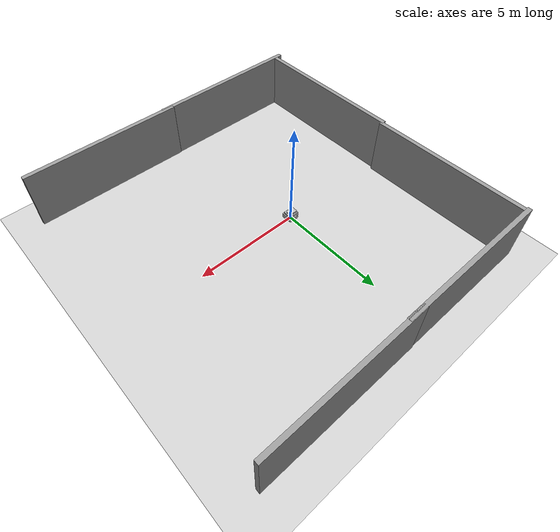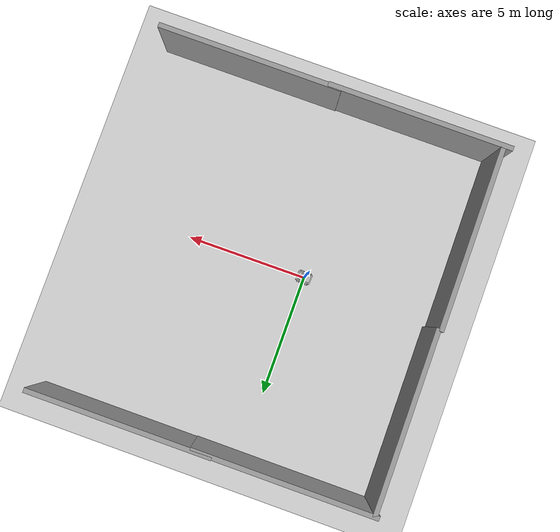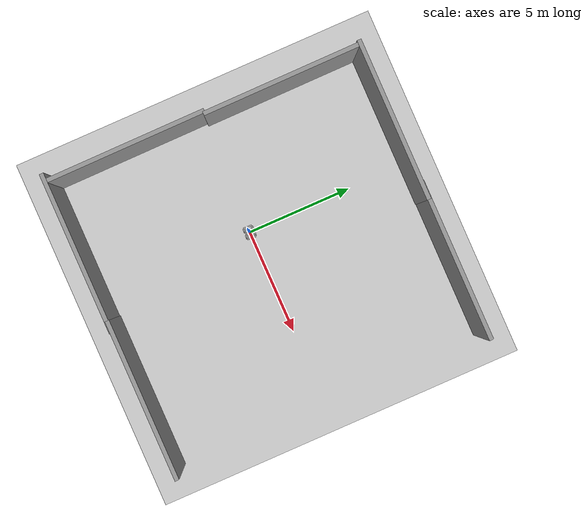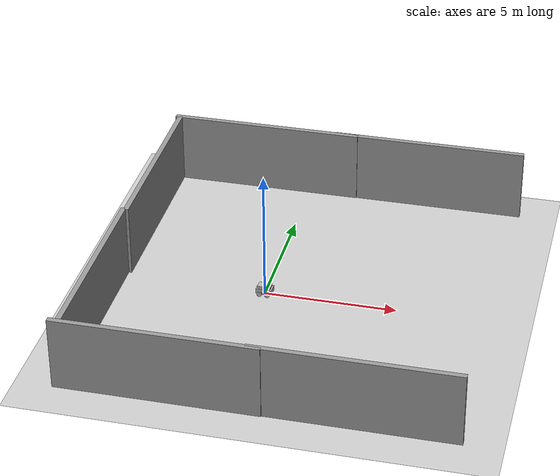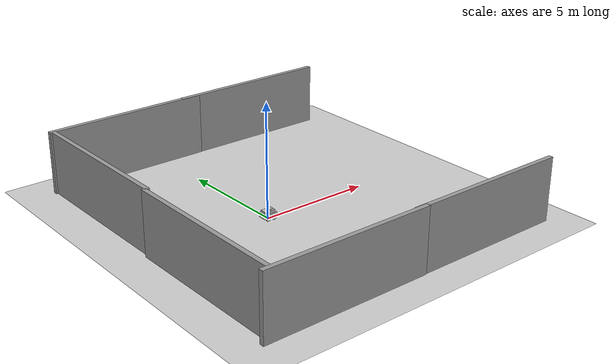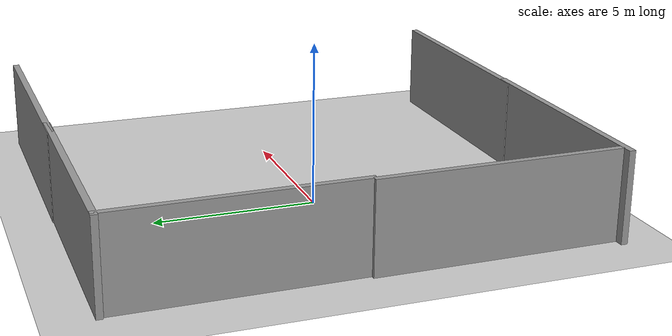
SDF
<sdf version="1.7">
 <world name="default">
  <light name="sun" type="directional">
   <pose>0 0 10 0 -0 0</pose>
   <diffuse>0.8 0.8 0.8 1</diffuse>
   <specular>0.2 0.2 0.2 1</specular>
   <attenuation>
    <range>1000</range>
    <constant>0.9</constant>
    <linear>0.01</linear>
    <quadratic>0.001</quadratic>
   </attenuation>
   <direction>-0.5 0.1 -0.9</direction>
   <spot><inner_angle>0</inner_angle><outer_angle>0</outer_angle><falloff>0</falloff></spot>
  </light>
  <model name="ground_plane">
   <static>1</static>
   <link name="link">
    <collision name="collision">
     <geometry><plane><normal>0 0 1</normal><size>100 100</size></plane></geometry>
     <surface><friction><ode><mu>100</mu><mu2>50</mu2></ode></friction></surface>
    </collision>
    <visual name="visual">
     <cast_shadows>0</cast_shadows>
     <geometry><plane><normal>0 0 1</normal><size>100 100</size></plane></geometry>
     <material>
      <script><uri>file://media/materials/scripts/gazebo.material</uri><name>Gazebo/Grey</name></script>
     </material>
    </visual>
   </link>
  </model>
  <gravity>0 0 -9.8</gravity>
  <magnetic_field>6e-06 2.3e-05 -4.2e-05</magnetic_field>
  <atmosphere type="adiabatic"/>
  <physics type="ode">
   <max_step_size>0.001</max_step_size>
   <real_time_factor>1</real_time_factor>
   <real_time_update_rate>1000</real_time_update_rate>
  </physics>
  <scene><ambient>0.4 0.4 0.4 1</ambient><background>0.7 0.7 0.7 1</background><shadows>1</shadows></scene>
  <audio><device>default</device></audio>
  <spherical_coordinates>
   <surface_model>EARTH_WGS84</surface_model>
   <latitude_deg>0</latitude_deg>
   <longitude_deg>0</longitude_deg>
   <elevation>0</elevation>
   <heading_deg>0</heading_deg>
  </spherical_coordinates>
  <model name="grey_wall">
   <static>1</static>
   <link name="link">
    <pose>0 0 1.4 0 -0 0</pose>
    <collision name="collision"><geometry><box><size>7.5 0.2 2.8</size></box></geometry></collision>
    <visual name="visual">
     <cast_shadows>0</cast_shadows>
     <geometry><box><size>7.5 0.2 2.8</size></box></geometry>
     <material>
      <script>
       <uri>model://grey_wall/materials/scripts</uri>
       <uri>model://grey_wall/materials/textures</uri>
       <name>vrc/grey_wall</name>
      </script>
     </material>
    </visual>
   </link>
   <pose>-1.82853 7.64203 0 0 -0 0</pose>
  </model>
  <model name="grey_wall_clone">
   <static>1</static>
   <link name="link">
    <pose>0 0 1.4 0 -0 0</pose>
    <collision name="collision"><geometry><box><size>7.5 0.2 2.8</size></box></geometry></collision>
    <visual name="visual">
     <cast_shadows>0</cast_shadows>
     <geometry><box><size>7.5 0.2 2.8</size></box></geometry>
     <material>
      <script>
       <uri>model://grey_wall/materials/scripts</uri>
       <uri>model://grey_wall/materials/textures</uri>
       <name>vrc/grey_wall</name>
      </script>
     </material>
    </visual>
   </link>
   <pose>4.78963 7.66435 0 0 -0 0</pose>
  </model>
  <model name="grey_wall_clone_clone">
   <static>1</static>
   <link name="link">
    <pose>0 0 1.4 0 -0 0</pose>
    <collision name="collision"><geometry><box><size>7.5 0.2 2.8</size></box></geometry></collision>
    <visual name="visual">
     <cast_shadows>0</cast_shadows>
     <geometry><box><size>7.5 0.2 2.8</size></box></geometry>
     <material>
      <script>
       <uri>model://grey_wall/materials/scripts</uri>
       <uri>model://grey_wall/materials/textures</uri>
       <name>vrc/grey_wall</name>
      </script>
     </material>
    </visual>
   </link>
   <pose>4.87125 -7.15201 0 0 -0 0</pose>
  </model>
  <model name="grey_wall_clone_clone_clone">
   <static>1</static>
   <link name="link">
    <pose>0 0 1.4 0 -0 0</pose>
    <collision name="collision"><geometry><box><size>7.5 0.2 2.8</size></box></geometry></collision>
    <visual name="visual">
     <cast_shadows>0</cast_shadows>
     <geometry><box><size>7.5 0.2 2.8</size></box></geometry>
     <material>
      <script>
       <uri>model://grey_wall/materials/scripts</uri>
       <uri>model://grey_wall/materials/textures</uri>
       <name>vrc/grey_wall</name>
      </script>
     </material>
    </visual>
   </link>
   <pose>-2.06223 -7.18553 0 0 -0 0</pose>
  </model>
  <model name="grey_wall_clone_clone_clone_0">
   <static>1</static>
   <link name="link">
    <pose>0 0 1.4 0 -0 0</pose>
    <collision name="collision"><geometry><box><size>7.5 0.2 2.8</size></box></geometry></collision>
    <visual name="visual">
     <cast_shadows>0</cast_shadows>
     <geometry><box><size>7.5 0.2 2.8</size></box></geometry>
     <material>
      <script>
       <uri>model://grey_wall/materials/scripts</uri>
       <uri>model://grey_wall/materials/textures</uri>
       <name>vrc/grey_wall</name>
      </script>
     </material>
    </visual>
   </link>
   <pose>-5.38363 3.97999 0 0 -0 1.57536</pose>
  </model>
  <model name="grey_wall_clone_clone_clone_0_clone">
   <static>1</static>
   <link name="link">
    <pose>0 0 1.4 0 -0 0</pose>
    <collision name="collision"><geometry><box><size>7.5 0.2 2.8</size></box></geometry></collision>
    <visual name="visual">
     <cast_shadows>0</cast_shadows>
     <geometry><box><size>7.5 0.2 2.8</size></box></geometry>
     <material>
      <script>
       <uri>model://grey_wall/materials/scripts</uri>
       <uri>model://grey_wall/materials/textures</uri>
       <name>vrc/grey_wall</name>
      </script>
     </material>
    </visual>
   </link>
   <pose>-5.46152 -3.41995 0 0 -0 1.57536</pose>
  </model>
  <model name="my_zobot">
   <link name="base_footprint">
    <inertial>
     <pose>0.1 0 0.425 0 -0 0</pose>
     <mass>1</mass>
     <inertia>
      <ixx>0.0233333</ixx>
      <ixy>0</ixy>
      <ixz>0</ixz>
      <iyy>0.0233333</iyy>
      <iyz>0</iyz>
      <izz>0.005</izz>
     </inertia>
    </inertial>
    <collision name="base_footprint_fixed_joint_lump__base_link_collision">
     <pose>0 0 0.2 0 -0 0</pose>
     <geometry><box><size>0.6 0.4 0.2</size></box></geometry>
    </collision>
    <collision name="base_footprint_fixed_joint_lump__lidar_collision_1">
     <pose>0.1 0 0.425 0 -0 0</pose>
     <geometry><cylinder><length>0.05</length><radius>0.1</radius></cylinder></geometry>
    </collision>
    <collision name="base_footprint_fixed_joint_lump__medi_box_collision_2">
     <pose>0 0 0.35 0 -0 0</pose>
     <geometry><box><size>0.4 0.3 0.1</size></box></geometry>
    </collision>
    <visual name="base_footprint_fixed_joint_lump__base_link_visual">
     <pose>0 0 0.2 0 -0 0</pose>
     <geometry><box><size>0.6 0.4 0.2</size></box></geometry>
    </visual>
    <visual name="base_footprint_fixed_joint_lump__lidar_visual_1">
     <pose>0.1 0 0.425 0 -0 0</pose>
     <geometry><cylinder><length>0.05</length><radius>0.1</radius></cylinder></geometry>
    </visual>
    <visual name="base_footprint_fixed_joint_lump__medi_box_visual_2">
     <pose>0 0 0.35 0 -0 0</pose>
     <geometry><box><size>0.5 0.3 0.1</size></box></geometry>
    </visual>
   </link>
   <joint name="base_front_left_wheel_joint" type="revolute">
    <pose relative_to="base_footprint">0.15 0.225 0.1 0 -0 0</pose>
    <parent>base_footprint</parent>
    <child>front_left_wheel</child>
    <axis>
     <xyz>0 1 0</xyz>
     <limit><lower>-1e+16</lower><upper>1e+16</upper></limit>
     <dynamics><spring_reference>0</spring_reference><spring_stiffness>0</spring_stiffness></dynamics>
    </axis>
   </joint>
   <link name="front_left_wheel">
    <pose relative_to="base_front_left_wheel_joint">0 0 0 0 -0 0</pose>
    <inertial>
     <pose>0 0 0 1.57 -0 0</pose>
     <mass>1</mass>
     <inertia>
      <ixx>0.00270833</ixx>
      <ixy>0</ixy>
      <ixz>0</ixz>
      <iyy>0.00270833</iyy>
      <iyz>0</iyz>
      <izz>0.005</izz>
     </inertia>
    </inertial>
    <collision name="front_left_wheel_collision">
     <pose>0 0 0 1.57 -0 0</pose>
     <geometry><cylinder><length>0.05</length><radius>0.1</radius></cylinder></geometry>
    </collision>
    <visual name="front_left_wheel_visual">
     <pose>0 0 0 1.57 -0 0</pose>
     <geometry><cylinder><length>0.05</length><radius>0.1</radius></cylinder></geometry>
    </visual>
   </link>
   <joint name="base_front_right_wheel_joint" type="revolute">
    <pose relative_to="base_footprint">0.15 -0.225 0.1 0 -0 0</pose>
    <parent>base_footprint</parent>
    <child>front_right_wheel</child>
    <axis>
     <xyz>0 1 0</xyz>
     <limit><lower>-1e+16</lower><upper>1e+16</upper></limit>
     <dynamics><spring_reference>0</spring_reference><spring_stiffness>0</spring_stiffness></dynamics>
    </axis>
   </joint>
   <link name="front_right_wheel">
    <pose relative_to="base_front_right_wheel_joint">0 0 0 0 -0 0</pose>
    <inertial>
     <pose>0 0 0 1.57 -0 0</pose>
     <mass>1</mass>
     <inertia>
      <ixx>0.00270833</ixx>
      <ixy>0</ixy>
      <ixz>0</ixz>
      <iyy>0.00270833</iyy>
      <iyz>0</iyz>
      <izz>0.005</izz>
     </inertia>
    </inertial>
    <collision name="front_right_wheel_collision">
     <pose>0 0 0 1.57 -0 0</pose>
     <geometry><cylinder><length>0.05</length><radius>0.1</radius></cylinder></geometry>
    </collision>
    <visual name="front_right_wheel_visual">
     <pose>0 0 0 1.57 -0 0</pose>
     <geometry><cylinder><length>0.05</length><radius>0.1</radius></cylinder></geometry>
    </visual>
   </link>
   <joint name="base_left_wheel_joint" type="revolute">
    <pose relative_to="base_footprint">-0.15 0.225 0.1 0 -0 0</pose>
    <parent>base_footprint</parent>
    <child>left_wheel</child>
    <axis>
     <xyz>0 1 0</xyz>
     <limit><lower>-1e+16</lower><upper>1e+16</upper></limit>
     <dynamics><spring_reference>0</spring_reference><spring_stiffness>0</spring_stiffness></dynamics>
    </axis>
   </joint>
   <link name="left_wheel">
    <pose relative_to="base_left_wheel_joint">0 0 0 0 -0 0</pose>
    <inertial>
     <pose>0 0 0 1.57 -0 0</pose>
     <mass>1</mass>
     <inertia>
      <ixx>0.00270833</ixx>
      <ixy>0</ixy>
      <ixz>0</ixz>
      <iyy>0.00270833</iyy>
      <iyz>0</iyz>
      <izz>0.005</izz>
     </inertia>
    </inertial>
    <collision name="left_wheel_collision">
     <pose>0 0 0 1.57 -0 0</pose>
     <geometry><cylinder><length>0.05</length><radius>0.1</radius></cylinder></geometry>
    </collision>
    <visual name="left_wheel_visual">
     <pose>0 0 0 1.57 -0 0</pose>
     <geometry><cylinder><length>0.05</length><radius>0.1</radius></cylinder></geometry>
    </visual>
   </link>
   <joint name="base_right_wheel_joint" type="revolute">
    <pose relative_to="base_footprint">-0.15 -0.225 0.1 0 -0 0</pose>
    <parent>base_footprint</parent>
    <child>right_wheel</child>
    <axis>
     <xyz>0 1 0</xyz>
     <limit><lower>-1e+16</lower><upper>1e+16</upper></limit>
     <dynamics><spring_reference>0</spring_reference><spring_stiffness>0</spring_stiffness></dynamics>
    </axis>
   </joint>
   <link name="right_wheel">
    <pose relative_to="base_right_wheel_joint">0 0 0 0 -0 0</pose>
    <inertial>
     <pose>0 0 0 1.57 -0 0</pose>
     <mass>1</mass>
     <inertia>
      <ixx>0.00270833</ixx>
      <ixy>0</ixy>
      <ixz>0</ixz>
      <iyy>0.00270833</iyy>
      <iyz>0</iyz>
      <izz>0.005</izz>
     </inertia>
    </inertial>
    <collision name="right_wheel_collision">
     <pose>0 0 0 1.57 -0 0</pose>
     <geometry><cylinder><length>0.05</length><radius>0.1</radius></cylinder></geometry>
    </collision>
    <visual name="right_wheel_visual">
     <pose>0 0 0 1.57 -0 0</pose>
     <geometry><cylinder><length>0.05</length><radius>0.1</radius></cylinder></geometry>
    </visual>
   </link>
   <static>0</static>
   <plugin name="gazebo_ros2_control" filename="libgazebo_ros2_control.so">
    <parameters>/home/deva/robot_ws/install/my_robot_description/share/my_robot_description/config/my_controllers.yaml</parameters>
   </plugin>
   <pose>0.005464 -0.012999 1.6e-05 1.7e-05 -5e-06 -0.045023</pose>
  </model>
 </world>
</sdf>
